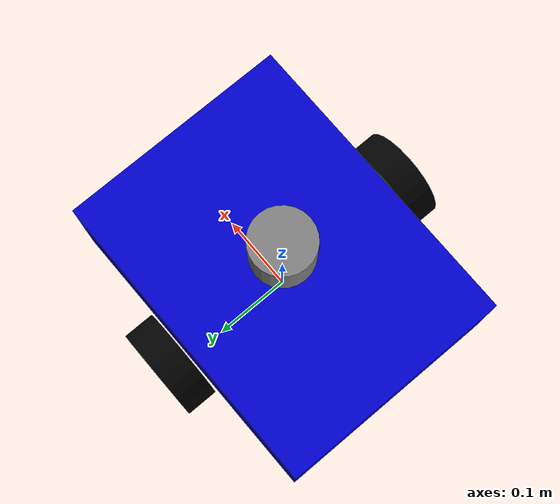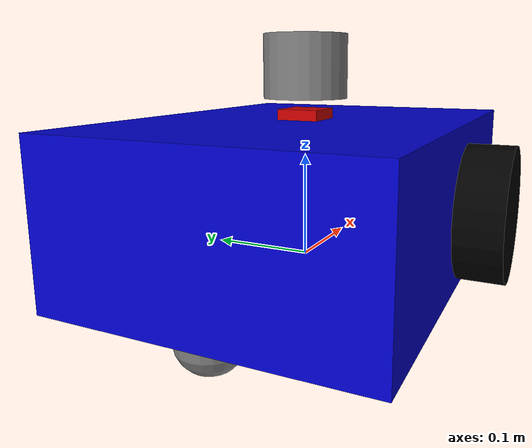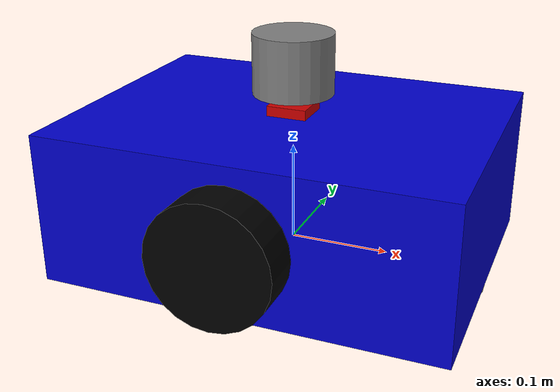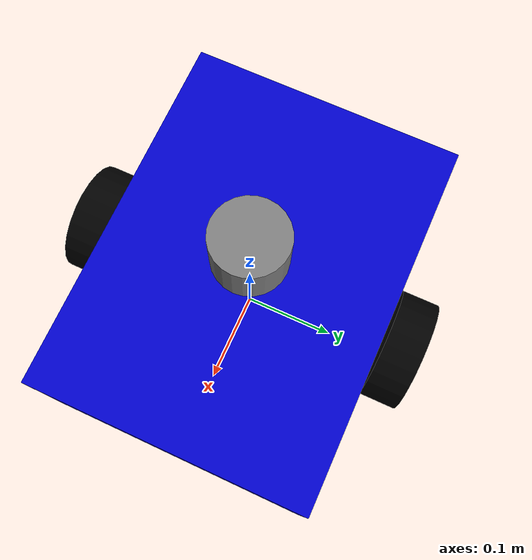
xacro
<?xml version="1.0"?>
<robot name="diff_drive_robot" xmlns:xacro="http://www.ros.org/wiki/xacro">

  <!-- ===== Properties ===== -->
  <xacro:property name="base_length"  value="0.40"/>
  <xacro:property name="base_width"   value="0.30"/>
  <xacro:property name="base_height"  value="0.15"/>
  <xacro:property name="wheel_radius" value="0.06"/>
  <xacro:property name="wheel_width"  value="0.04"/>
  <xacro:property name="wheel_offset_y" value="0.175"/>
  <xacro:property name="caster_radius" value="0.03"/>

  <!-- ===== Materials ===== -->
  <material name="blue">  <color rgba="0.0 0.0 0.8 1.0"/> </material>
  <material name="black"> <color rgba="0.0 0.0 0.0 1.0"/> </material>
  <material name="grey">  <color rgba="0.5 0.5 0.5 1.0"/> </material>
  <material name="red">   <color rgba="0.8 0.0 0.0 1.0"/> </material>

  <!-- ===== Base footprint (root) ===== -->
  <link name="base_footprint"/>

  <joint name="base_footprint_joint" type="fixed">
    <parent link="base_footprint"/>
    <child  link="base_link"/>
    <origin xyz="0 0 ${wheel_radius}" rpy="0 0 0"/>
  </joint>

  <!-- ===== Base link ===== -->
  <link name="base_link">
    <visual>
      <geometry>
        <box size="${base_length} ${base_width} ${base_height}"/>
      </geometry>
      <material name="blue"/>
    </visual>
    <collision>
      <geometry>
        <box size="${base_length} ${base_width} ${base_height}"/>
      </geometry>
    </collision>
    <inertial>
      <mass value="5.0"/>
      <inertia ixx="0.0395" ixy="0.0" ixz="0.0"
               iyy="0.0682" iyz="0.0"
               izz="0.0977"/>
    </inertial>
  </link>

  <!-- ===== Left wheel ===== -->
  <link name="left_wheel">
    <visual>
      <geometry>
        <cylinder radius="${wheel_radius}" length="${wheel_width}"/>
      </geometry>
      <material name="black"/>
    </visual>
    <collision>
      <geometry>
        <cylinder radius="${wheel_radius}" length="${wheel_width}"/>
      </geometry>
    </collision>
    <inertial>
      <mass value="0.5"/>
      <inertia ixx="0.000526" ixy="0.0" ixz="0.0"
               iyy="0.000526" iyz="0.0"
               izz="0.0009"/>
    </inertial>
  </link>

  <joint name="left_wheel_joint" type="continuous">
    <parent link="base_link"/>
    <child  link="left_wheel"/>
    <origin xyz="0 ${wheel_offset_y} 0" rpy="-1.5708 0 0"/>
    <axis xyz="0 0 1"/>
  </joint>

  <!-- ===== Right wheel ===== -->
  <link name="right_wheel">
    <visual>
      <geometry>
        <cylinder radius="${wheel_radius}" length="${wheel_width}"/>
      </geometry>
      <material name="black"/>
    </visual>
    <collision>
      <geometry>
        <cylinder radius="${wheel_radius}" length="${wheel_width}"/>
      </geometry>
    </collision>
    <inertial>
      <mass value="0.5"/>
      <inertia ixx="0.000526" ixy="0.0" ixz="0.0"
               iyy="0.000526" iyz="0.0"
               izz="0.0009"/>
    </inertial>
  </link>

  <joint name="right_wheel_joint" type="continuous">
    <parent link="base_link"/>
    <child  link="right_wheel"/>
    <origin xyz="0 -${wheel_offset_y} 0" rpy="-1.5708 0 0"/>
    <axis xyz="0 0 1"/>
  </joint>

  <!-- ===== Front caster ===== -->
  <link name="caster_front">
    <visual>
      <geometry><sphere radius="${caster_radius}"/></geometry>
      <material name="grey"/>
    </visual>
    <collision>
      <geometry><sphere radius="${caster_radius}"/></geometry>
    </collision>
    <inertial>
      <mass value="0.1"/>
      <inertia ixx="0.000036" ixy="0.0" ixz="0.0"
               iyy="0.000036" iyz="0.0"
               izz="0.000036"/>
    </inertial>
  </link>

  <joint name="caster_front_joint" type="fixed">
    <parent link="base_link"/>
    <child  link="caster_front"/>
    <origin xyz="${base_length/2 - caster_radius} 0 ${-base_height/2}" rpy="0 0 0"/>
  </joint>

  <!-- ===== Rear caster ===== -->
  <link name="caster_rear">
    <visual>
      <geometry><sphere radius="${caster_radius}"/></geometry>
      <material name="grey"/>
    </visual>
    <collision>
      <geometry><sphere radius="${caster_radius}"/></geometry>
    </collision>
    <inertial>
      <mass value="0.1"/>
      <inertia ixx="0.000036" ixy="0.0" ixz="0.0"
               iyy="0.000036" iyz="0.0"
               izz="0.000036"/>
    </inertial>
  </link>

  <joint name="caster_rear_joint" type="fixed">
    <parent link="base_link"/>
    <child  link="caster_rear"/>
    <origin xyz="${-(base_length/2 - caster_radius)} 0 ${-base_height/2}" rpy="0 0 0"/>
  </joint>

  <!-- ===== IMU link ===== -->
  <link name="imu_link">
    <visual>
      <geometry><box size="0.04 0.04 0.02"/></geometry>
      <material name="red"/>
    </visual>
    <inertial>
      <mass value="0.01"/>
      <inertia ixx="0.0" ixy="0.0" ixz="0.0"
               iyy="0.0" iyz="0.0" izz="0.0"/>
    </inertial>
  </link>

  <joint name="imu_joint" type="fixed">
    <parent link="base_link"/>
    <child  link="imu_link"/>
    <origin xyz="0 0 ${base_height/2}" rpy="0 0 0"/>
  </joint>

  <!-- ===== LIDAR link ===== -->
  <link name="lidar_link">
    <visual>
      <geometry><cylinder radius="0.04" length="0.06"/></geometry>
      <material name="grey"/>
    </visual>
    <collision>
      <geometry><cylinder radius="0.04" length="0.06"/></geometry>
    </collision>
    <inertial>
      <mass value="0.1"/>
      <inertia ixx="0.000043" ixy="0.0" ixz="0.0"
               iyy="0.000043" iyz="0.0"
               izz="0.00008"/>
    </inertial>
  </link>

  <joint name="lidar_joint" type="fixed">
    <parent link="base_link"/>
    <child  link="lidar_link"/>
    <origin xyz="0 0 ${base_height/2 + 0.05}" rpy="0 0 0"/>
  </joint>

  <!-- ===== Gazebo plugins ===== -->

  <!-- Differential drive controller -->
  <gazebo>
    <plugin name="diff_drive_controller" filename="libgazebo_ros_diff_drive.so">
      <ros>
        <namespace>/</namespace>
      </ros>
      <left_joint>left_wheel_joint</left_joint>
      <right_joint>right_wheel_joint</right_joint>
      <wheel_separation>${wheel_offset_y * 2}</wheel_separation>
      <wheel_diameter>${wheel_radius * 2}</wheel_diameter>
      <max_wheel_torque>20</max_wheel_torque>
      <max_wheel_acceleration>1.0</max_wheel_acceleration>
      <command_topic>cmd_vel</command_topic>
      <publish_odom>true</publish_odom>
      <publish_odom_tf>true</publish_odom_tf>
      <publish_wheel_tf>true</publish_wheel_tf>
      <odometry_topic>odom</odometry_topic>
      <odometry_frame>odom</odometry_frame>
      <!-- base_link is the Nav2 convention; odom→base_link TF is published here -->
      <robot_base_frame>base_link</robot_base_frame>
    </plugin>
  </gazebo>

  <!-- IMU sensor plugin -->
  <gazebo reference="imu_link">
    <sensor name="imu_sensor" type="imu">
      <always_on>true</always_on>
      <update_rate>50</update_rate>
      <visualize>true</visualize>
      <plugin filename="libgazebo_ros_imu_sensor.so" name="imu_plugin">
        <ros>
          <namespace>/</namespace>
          <remapping>~/out:=imu</remapping>
        </ros>
        <initial_orientation_as_reference>false</initial_orientation_as_reference>
      </plugin>
    </sensor>
  </gazebo>

  <!-- LIDAR sensor plugin -->
  <gazebo reference="lidar_link">
    <sensor name="lidar_sensor" type="ray">
      <always_on>true</always_on>
      <visualize>true</visualize>
      <update_rate>10</update_rate>
      <ray>
        <scan>
          <horizontal>
            <samples>360</samples>
            <resolution>1</resolution>
            <min_angle>-3.14159</min_angle>
            <max_angle>3.14159</max_angle>
          </horizontal>
        </scan>
        <range>
          <min>0.12</min>
          <max>10.0</max>
          <resolution>0.01</resolution>
        </range>
        <noise>
          <type>gaussian</type>
          <mean>0.0</mean>
          <stddev>0.01</stddev>
        </noise>
      </ray>
      <plugin filename="libgazebo_ros_ray_sensor.so" name="lidar_plugin">
        <ros>
          <namespace>/</namespace>
          <remapping>~/out:=scan</remapping>
        </ros>
        <output_type>sensor_msgs/LaserScan</output_type>
        <frame_name>lidar_link</frame_name>
      </plugin>
    </sensor>
  </gazebo>

  <!-- Base link colour in Gazebo -->
  <gazebo reference="base_link">
    <material>Gazebo/Blue</material>
  </gazebo>
  <gazebo reference="left_wheel">
    <material>Gazebo/Black</material>
  </gazebo>
  <gazebo reference="right_wheel">
    <material>Gazebo/Black</material>
  </gazebo>

</robot>
